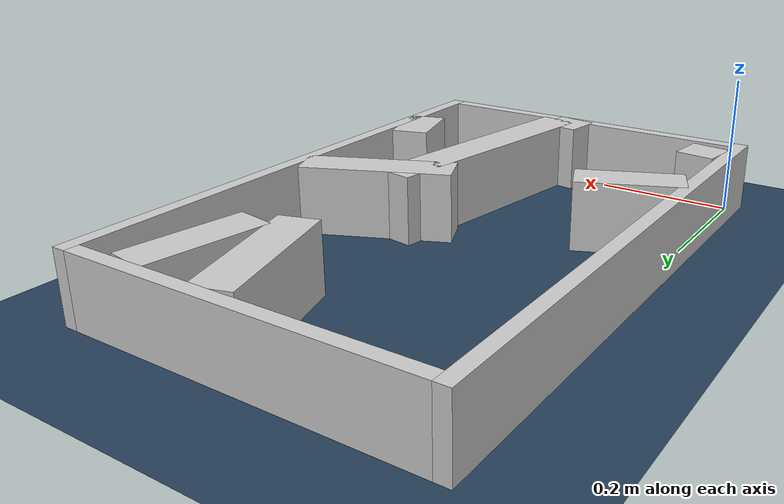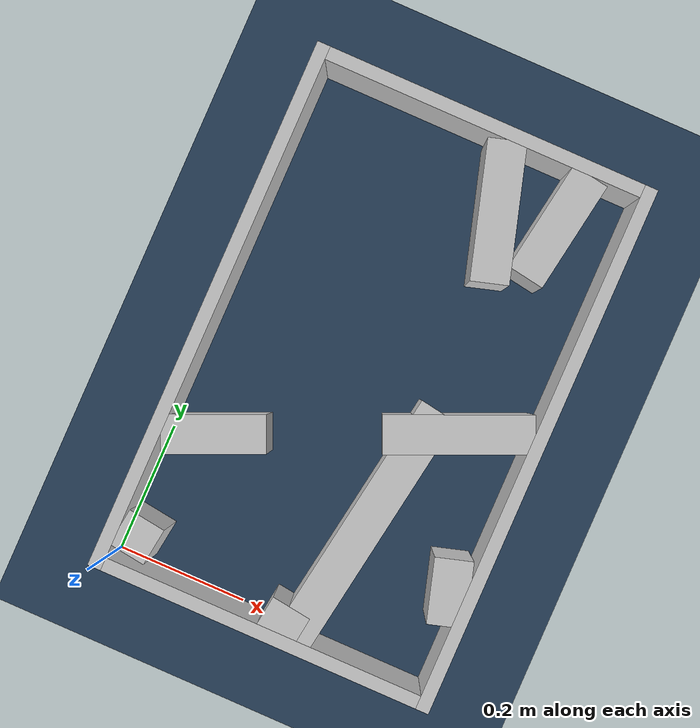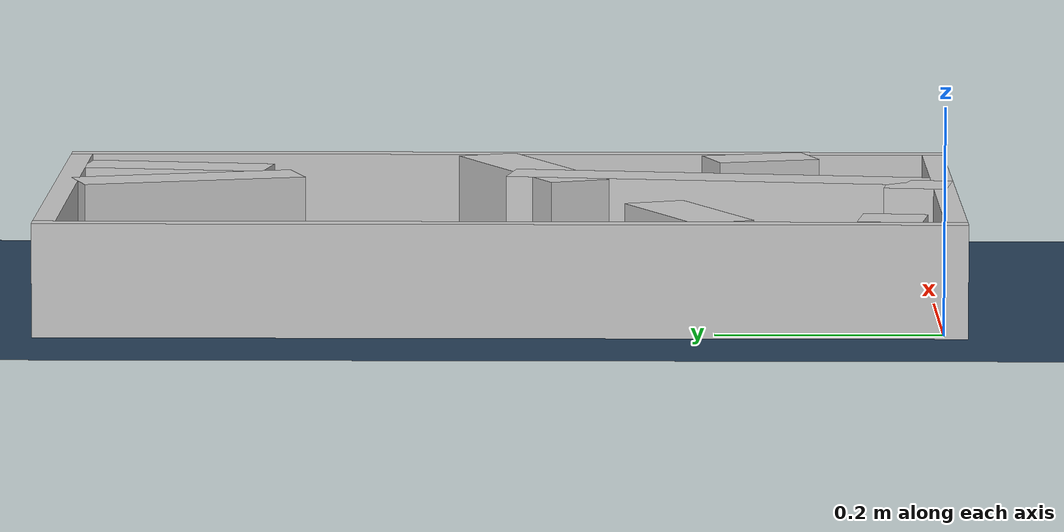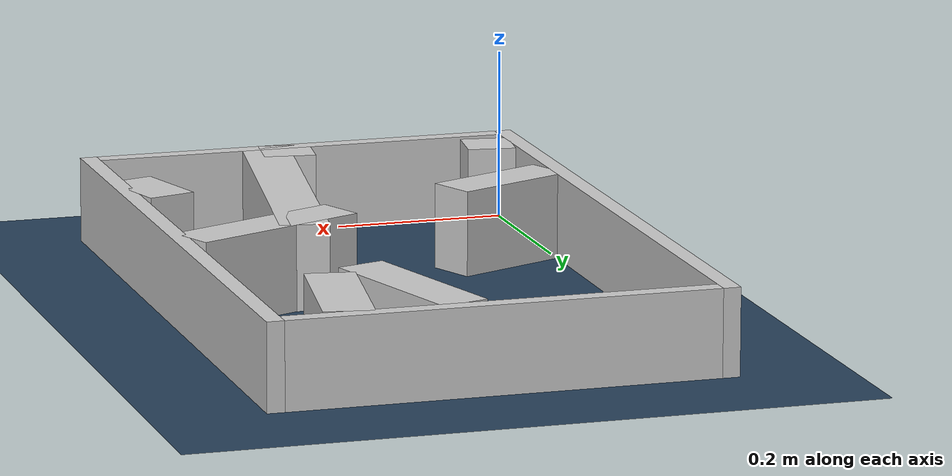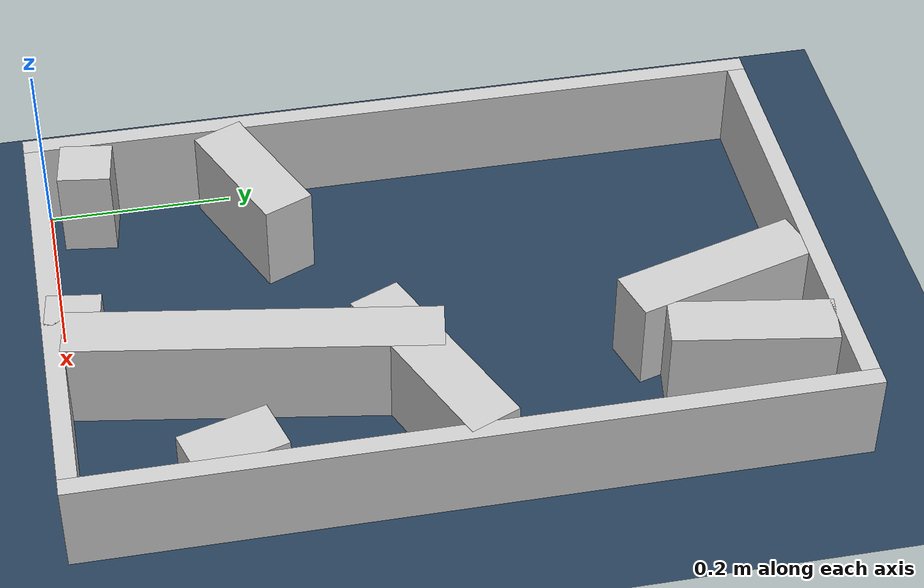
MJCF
<?xml version="1.0" ?>
<mujoco model="generated_real_template">
  <compiler angle="degree"/>
  <option timestep="0.002" integrator="implicitfast" iterations="100" cone="elliptic"/>
  <default>
    <geom density="1"/>
  </default>
  <asset>
    <texture builtin="gradient" height="3072" rgb1="0.3 0.5 0.7" rgb2="0 0 0" type="skybox" width="512"/>
    <texture builtin="checker" height="300" mark="edge" markrgb="0.8 0.8 0.8" name="groundplane" rgb1="0.2 0.3 0.4" rgb2="0.1 0.2 0.3" type="2d" width="300"/>
    <material name="groundplane" reflectance="0.2" texrepeat="5 5" texture="groundplane" texuniform="true"/>
  </asset>
  <worldbody>
    <light dir="0 0 -1" directional="true" pos="0 0 1.5"/>
    <geom name="floor" type="plane" condim="4" friction="0.5 0.005 0.001" material="groundplane" size="0 0 0.05"/>
    <body name="walls">
      <geom name="wall_boundary_left" type="box" condim="4" friction="1.0 0.005 0.0001" rgba="0.8 0.8 0.8 1" pos="-0.010000 0.387500 0.050000" euler="0 0 0.000000" size="0.010000 0.407500 0.050000"/>
      <geom name="wall_boundary_right" type="box" condim="4" friction="1.0 0.005 0.0001" rgba="0.8 0.8 0.8 1" pos="0.500000 0.387500 0.050000" euler="0 0 0.000000" size="0.010000 0.407500 0.050000"/>
      <geom name="wall_boundary_bottom" type="box" condim="4" friction="1.0 0.005 0.0001" rgba="0.8 0.8 0.8 1" pos="0.245000 -0.010000 0.050000" euler="0 0 0.000000" size="0.245000 0.010000 0.050000"/>
      <geom name="wall_boundary_top" type="box" condim="4" friction="1.0 0.005 0.0001" rgba="0.8 0.8 0.8 1" pos="0.245000 0.785000 0.050000" euler="0 0 0.000000" size="0.245000 0.010000 0.050000"/>
      <geom name="wall_inner_1_1" type="box" condim="4" friction="1.0 0.005 0.0001" rgba="0.8 0.8 0.8 1" pos="0.389844 0.362259 0.050000" euler="0 0 -156.408456" size="0.109290 0.028500 0.050000"/>
      <geom name="wall_inner_1_2" type="box" condim="4" friction="1.0 0.005 0.0001" rgba="0.8 0.8 0.8 1" pos="0.069242 0.222247 0.050000" euler="0 0 -156.408456" size="0.075557 0.028500 0.050000"/>
      <geom name="wall_inner_2_1" type="box" condim="4" friction="1.0 0.005 0.0001" rgba="0.8 0.8 0.8 1" pos="0.266996 0.012300 0.050000" euler="0 0 172.373571" size="0.030523 0.028500 0.050000"/>
      <geom name="wall_inner_2_2" type="box" condim="4" friction="1.0 0.005 0.0001" rgba="0.8 0.8 0.8 1" pos="0.028277 0.044264 0.050000" euler="0 0 172.373571" size="0.028529 0.028500 0.050000"/>
      <geom name="wall_inner_3_1" type="box" condim="4" friction="1.0 0.005 0.0001" rgba="0.8 0.8 0.8 1" pos="0.313575 0.676140 0.050000" euler="0 0 -73.510470" size="0.103100 0.028500 0.050000"/>
      <geom name="wall_inner_3_2" type="box" condim="4" friction="1.0 0.005 0.0001" rgba="0.8 0.8 0.8 1" pos="0.468999 0.151084 0.050000" euler="0 0 -73.510470" size="0.048169 0.028500 0.050000"/>
      <geom name="wall_inner_4_1" type="box" condim="4" friction="1.0 0.005 0.0001" rgba="0.8 0.8 0.8 1" pos="0.399801 0.690367 0.050000" euler="0 0 -99.114924" size="0.085715 0.028500 0.050000"/>
      <geom name="wall_inner_4_2" type="box" condim="4" friction="1.0 0.005 0.0001" rgba="0.8 0.8 0.8 1" pos="0.319647 0.190783 0.050000" euler="0 0 -99.114924" size="0.193222 0.028500 0.050000"/>
    </body>
  </worldbody>
</mujoco>
